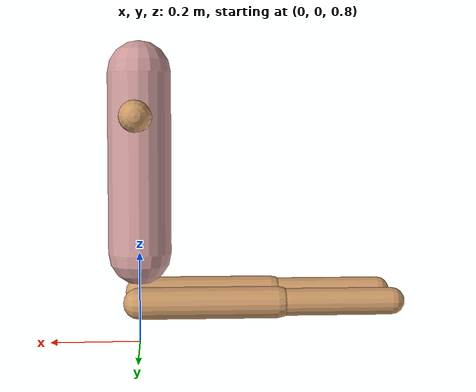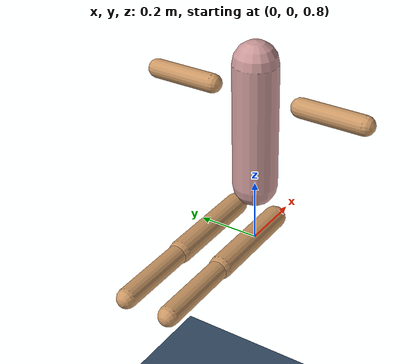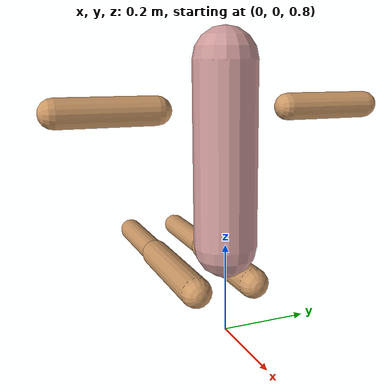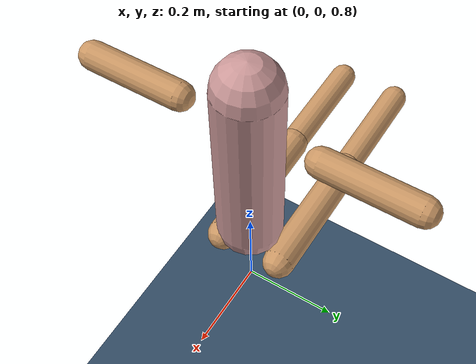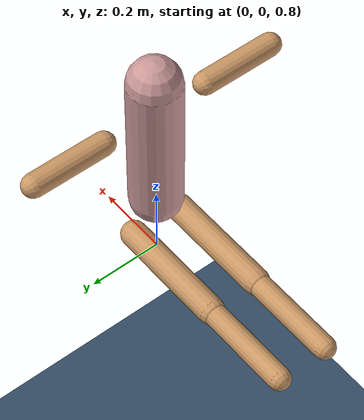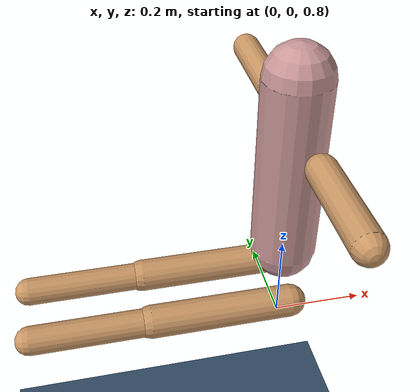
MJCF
<mujoco model="simplified_humanoid">
    <compiler angle="degree" coordinate="local"/>
    <option timestep="0.01" gravity="0 0 -9.81"/>

    <size njmax="1000" nconmax="200"/>

    <default>
        <joint limited="true" damping="1"/>
        <geom friction="0.8 0.1 0.1" density="1000" margin="0.01" condim="1" rgba="0.8 0.6 0.4 1"/>
        <motor ctrllimited="true" ctrlrange="-1.0 1.0"/>
    </default>

    <worldbody>
        <!-- Ground -->
        <geom name="floor" type="plane" size="10 10 0.1" rgba="0.2 0.3 0.4 1"/>

        <!-- Torso -->
        <body name="torso" pos="0 0 1.0">
            <geom name="torso_geom" type="capsule" size="0.07 0.2" fromto="0 0 0 0 0 0.4" rgba="0.8 0.6 0.6 1"/>
            <joint name="torso_yaw" type="hinge" axis="0 0 1" limited="true" range="-30 30"/>
            <joint name="torso_pitch" type="hinge" axis="1 0 0" limited="true" range="-30 30"/>

            <!-- Left Arm -->
            <body name="left_arm" pos="0 0.15 0.3">
                <joint name="left_shoulder" type="hinge" axis="0 1 0" range="-60 60"/>
                <geom type="capsule" fromto="0 0 0 0 0.2 0" size="0.03"/>
            </body>

            <!-- Right Arm -->
            <body name="right_arm" pos="0 -0.15 0.3">
                <joint name="right_shoulder" type="hinge" axis="0 1 0" range="-60 60"/>
                <geom type="capsule" fromto="0 0 0 0 -0.2 0" size="0.03"/>
            </body>

            <!-- Left Leg -->
            <body name="left_leg" pos="0 0.07 -0.1">
                <joint name="left_hip" type="hinge" axis="1 0 0" range="-45 45"/>
                <geom type="capsule" fromto="0 0 0 -0.3 0 0" size="0.035"/>
                <body name="left_knee" pos="-0.3 0 0">
                    <joint name="left_knee" type="hinge" axis="1 0 0" range="0 90"/>
                    <geom type="capsule" fromto="0 0 0 -0.25 0 0" size="0.03"/>
                </body>
            </body>

            <!-- Right Leg -->
            <body name="right_leg" pos="0 -0.07 -0.1">
                <joint name="right_hip" type="hinge" axis="1 0 0" range="-45 45"/>
                <geom type="capsule" fromto="0 0 0 -0.3 0 0" size="0.035"/>
                <body name="right_knee" pos="-0.3 0 0">
                    <joint name="right_knee" type="hinge" axis="1 0 0" range="0 90"/>
                    <geom type="capsule" fromto="0 0 0 -0.25 0 0" size="0.03"/>
                </body>
            </body>
        </body>
    </worldbody>

    <actuator>
        <motor joint="torso_yaw" ctrlrange="-1 1"/>
        <motor joint="torso_pitch" ctrlrange="-1 1"/>
        <motor joint="left_shoulder" ctrlrange="-1 1"/>
        <motor joint="right_shoulder" ctrlrange="-1 1"/>
        <motor joint="left_hip" ctrlrange="-1 1"/>
        <motor joint="left_knee" ctrlrange="-1 1"/>
        <motor joint="right_hip" ctrlrange="-1 1"/>
        <motor joint="right_knee" ctrlrange="-1 1"/>
    </actuator>
</mujoco>
